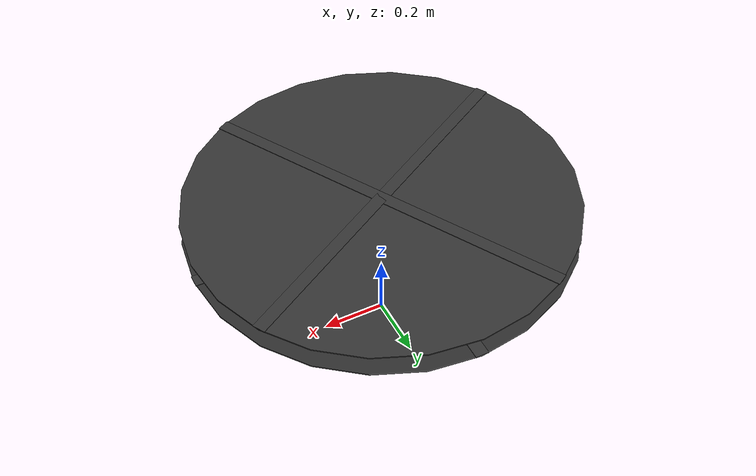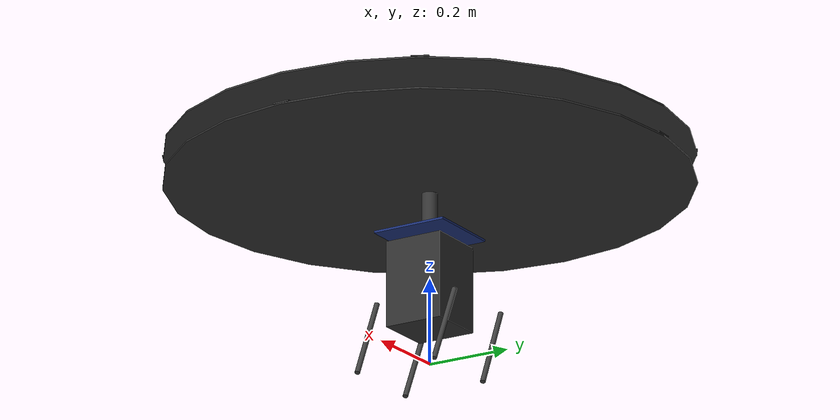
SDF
<?xml version="1.0"?>
<sdf version="1.9">
  <model name="ingenuity">
    <static>true</static>

    <!-- Fuselage: small box -->
    <link name="body">
      <pose>0 0 0.18 0 0 0</pose>
      <inertial>
        <mass>1.5</mass>
        <inertia><ixx>0.005</ixx><iyy>0.005</iyy><izz>0.005</izz></inertia>
      </inertial>
      <visual name="hull">
        <geometry><box><size>0.14 0.14 0.20</size></box></geometry>
        <material>
          <ambient>0.10 0.10 0.10 1</ambient>
          <diffuse>0.18 0.18 0.18 1</diffuse>
          <specular>0.30 0.30 0.30 1</specular>
        </material>
      </visual>
      <!-- Solar panel on top -->
      <visual name="solar">
        <pose>0 0 0.12 0 0 0</pose>
        <geometry><box><size>0.18 0.18 0.005</size></box></geometry>
        <material>
          <ambient>0.05 0.06 0.20 1</ambient>
          <diffuse>0.10 0.18 0.45 1</diffuse>
          <specular>0.6 0.6 0.6 1</specular>
        </material>
      </visual>
    </link>

    <!-- Mast between fuselage and the lower rotor -->
    <link name="mast">
      <pose>0 0 0.34 0 0 0</pose>
      <visual name="m">
        <geometry><cylinder><radius>0.018</radius><length>0.12</length></cylinder></geometry>
        <material>
          <ambient>0.12 0.12 0.12 1</ambient>
          <diffuse>0.20 0.20 0.20 1</diffuse>
        </material>
      </visual>
    </link>

    <!-- Lower coaxial rotor (thin cylinder disk) -->
    <link name="rotor_lower">
      <pose>0 0 0.42 0 0 0</pose>
      <visual name="disk">
        <geometry><cylinder><radius>0.6</radius><length>0.004</length></cylinder></geometry>
        <material>
          <ambient>0.08 0.08 0.08 1</ambient>
          <diffuse>0.18 0.18 0.18 1</diffuse>
          <specular>0.4 0.4 0.4 1</specular>
        </material>
      </visual>
      <visual name="blade_a">
        <pose>0 0 0.0025 0 0 0</pose>
        <geometry><box><size>1.20 0.04 0.003</size></box></geometry>
        <material><ambient>0.08 0.08 0.08 1</ambient><diffuse>0.20 0.20 0.20 1</diffuse></material>
      </visual>
      <visual name="blade_b">
        <pose>0 0 0.0025 0 0 1.5708</pose>
        <geometry><box><size>1.20 0.04 0.003</size></box></geometry>
        <material><ambient>0.08 0.08 0.08 1</ambient><diffuse>0.20 0.20 0.20 1</diffuse></material>
      </visual>
    </link>

    <!-- Upper coaxial rotor, offset 30 deg from lower so both visible -->
    <link name="rotor_upper">
      <pose>0 0 0.49 0 0 0.523599</pose>
      <visual name="disk">
        <geometry><cylinder><radius>0.6</radius><length>0.004</length></cylinder></geometry>
        <material>
          <ambient>0.08 0.08 0.08 1</ambient>
          <diffuse>0.20 0.20 0.20 1</diffuse>
          <specular>0.4 0.4 0.4 1</specular>
        </material>
      </visual>
      <visual name="blade_a">
        <pose>0 0 0.0025 0 0 0</pose>
        <geometry><box><size>1.20 0.04 0.003</size></box></geometry>
        <material><ambient>0.08 0.08 0.08 1</ambient><diffuse>0.20 0.20 0.20 1</diffuse></material>
      </visual>
      <visual name="blade_b">
        <pose>0 0 0.0025 0 0 1.5708</pose>
        <geometry><box><size>1.20 0.04 0.003</size></box></geometry>
        <material><ambient>0.08 0.08 0.08 1</ambient><diffuse>0.20 0.20 0.20 1</diffuse></material>
      </visual>
    </link>

    <!-- Four splayed landing legs -->
    <link name="leg_fr">
      <pose>0.10 -0.10 0.05 0.30 -0.30 -0.7854</pose>
      <visual name="v"><geometry><cylinder><radius>0.006</radius><length>0.20</length></cylinder></geometry>
        <material><ambient>0.15 0.15 0.15 1</ambient><diffuse>0.25 0.25 0.25 1</diffuse></material></visual>
    </link>
    <link name="leg_fl">
      <pose>0.10 0.10 0.05 -0.30 -0.30 0.7854</pose>
      <visual name="v"><geometry><cylinder><radius>0.006</radius><length>0.20</length></cylinder></geometry>
        <material><ambient>0.15 0.15 0.15 1</ambient><diffuse>0.25 0.25 0.25 1</diffuse></material></visual>
    </link>
    <link name="leg_br">
      <pose>-0.10 -0.10 0.05 0.30 0.30 -2.3562</pose>
      <visual name="v"><geometry><cylinder><radius>0.006</radius><length>0.20</length></cylinder></geometry>
        <material><ambient>0.15 0.15 0.15 1</ambient><diffuse>0.25 0.25 0.25 1</diffuse></material></visual>
    </link>
    <link name="leg_bl">
      <pose>-0.10 0.10 0.05 -0.30 0.30 2.3562</pose>
      <visual name="v"><geometry><cylinder><radius>0.006</radius><length>0.20</length></cylinder></geometry>
        <material><ambient>0.15 0.15 0.15 1</ambient><diffuse>0.25 0.25 0.25 1</diffuse></material></visual>
    </link>
  </model>
</sdf>
